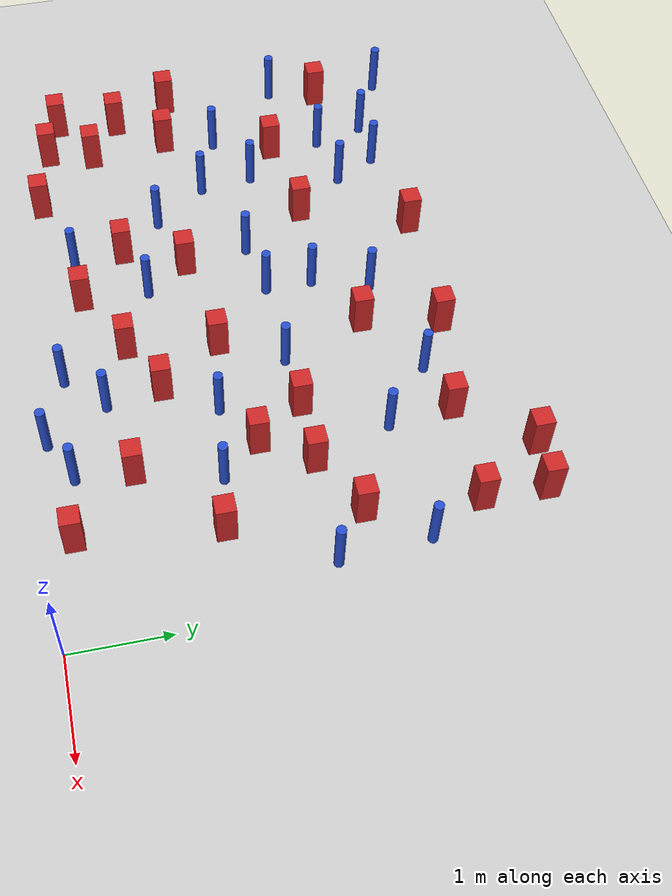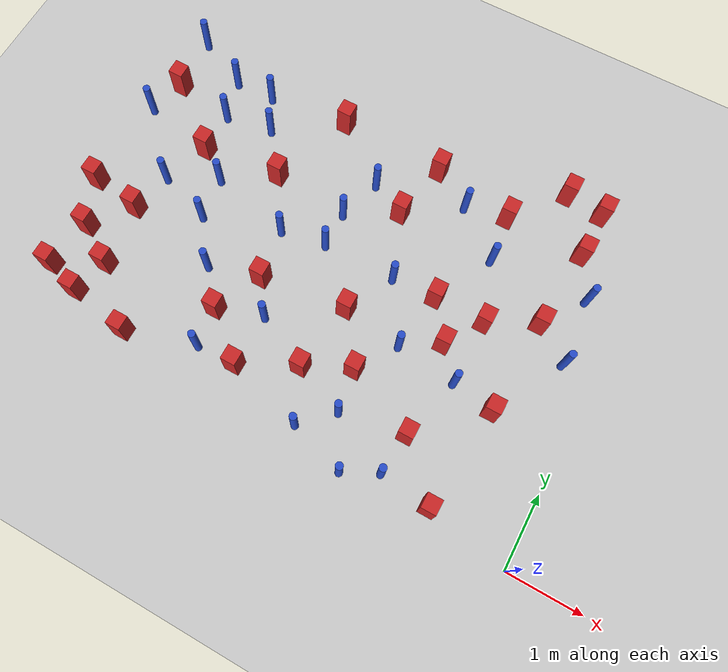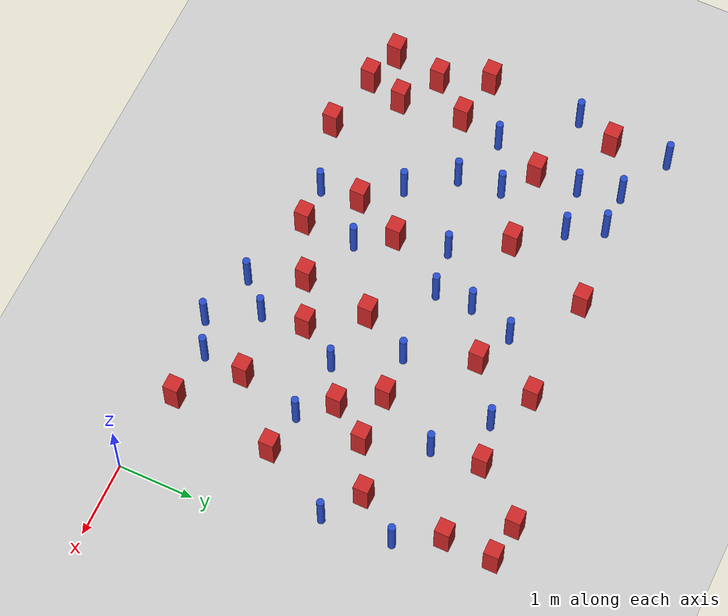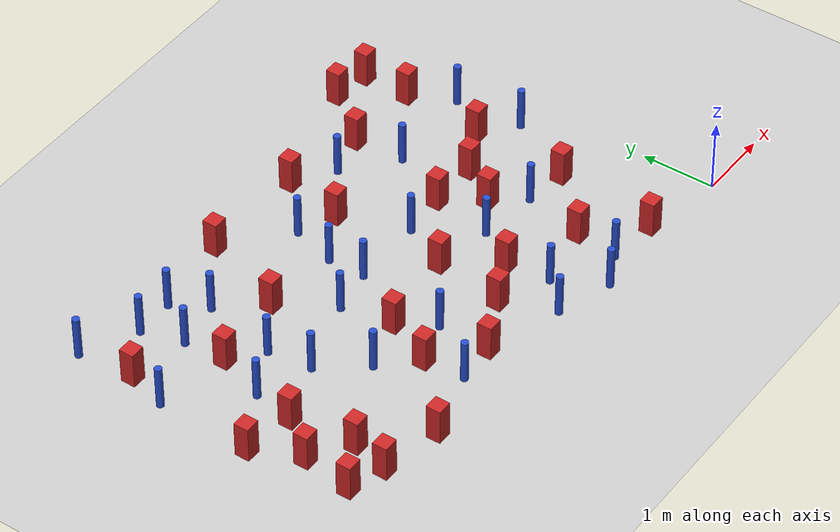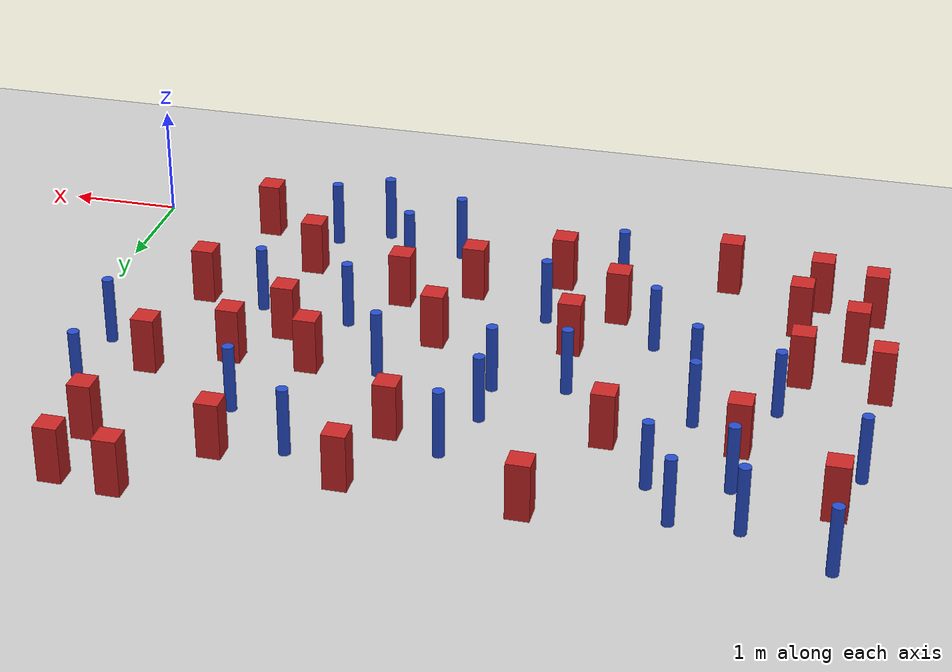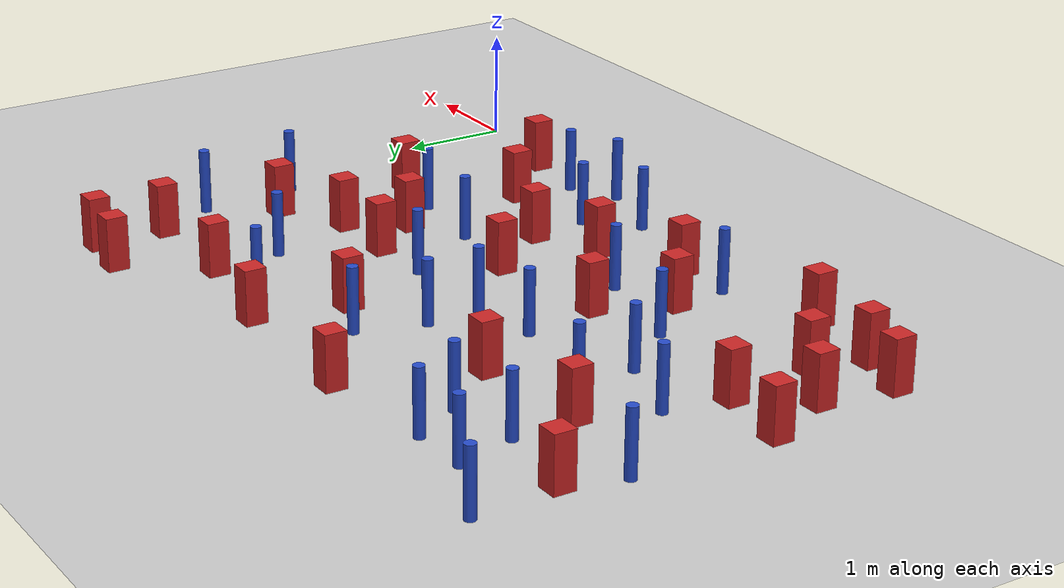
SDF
<sdf version="1.6">
 <world name="default">
  <model name="ground_plane">
   <static>1</static>
   <link name="link">
    <collision name="collision">
     <geometry><plane><normal>0 0 1</normal><size>100 100</size></plane></geometry>
     <surface><friction><ode><mu>100</mu><mu2>50</mu2></ode></friction></surface>
    </collision>
    <visual name="visual">
     <cast_shadows>0</cast_shadows>
     <geometry><plane><normal>0 0 1</normal><size>100 100</size></plane></geometry>
     <material>
      <ambient>1.0 1.0 1.0 1.0</ambient>
      <diffuse>0.8 0.8 0.8 1.0</diffuse>
      <specular>0.01 0.01 0.01 1.000000</specular>
     </material>
    </visual>
   </link>
  </model>
  <model name="square_post_obstacle5">
   <static>true</static>
   <pose>-6.71850591008 1.31194044388 -6.11067671241e-07 -5.50515727128e-06 -8.79689657224e-07 2.37013304536e-05</pose>
   <link name="link">
    <pose>0 0 0.25 0 -0 0</pose>
    <inertial>
     <mass>100</mass>
     <inertia>
      <ixx>0.166667</ixx>
      <ixy>0</ixy>
      <ixz>0</ixz>
      <iyy>0.166667</iyy>
      <iyz>0</iyz>
      <izz>0.166667</izz>
     </inertia>
    </inertial>
    <collision name="collision"><geometry><box><size>.2 .2 .5</size></box></geometry></collision>
    <visual name="visual">
     <geometry><box><size>.2 .2 .5</size></box></geometry>
     <material>
      <script><name>Gazebo/Red</name><uri>file://media/materials/scripts/gazebo.material</uri></script>
     </material>
    </visual>
   </link>
  </model>
  <model name="pole_obstacle9">
   <static>true</static>
   <pose>-4.42675377921 2.47935275778 -9.47619616065e-06 5.49618799738e-07 2.36310414051e-07 -1.55090534805e-07</pose>
   <link name="link">
    <pose>0 0 0.3 0 -0 0</pose>
    <inertial>
     <mass>1</mass>
     <inertia><ixx>0.145833</ixx><ixy>0</ixy><ixz>0</ixz><iyy>0.145833</iyy><iyz>0</iyz><izz>0.125</izz></inertia>
    </inertial>
    <collision name="collision">
     <geometry><cylinder><radius>0.05</radius><length>.6</length></cylinder></geometry>
    </collision>
    <visual name="visual">
     <geometry><cylinder><radius>0.05</radius><length>.6</length></cylinder></geometry>
     <material>
      <script><name>Gazebo/Blue</name><uri>file://media/materials/scripts/gazebo.material</uri></script>
     </material>
    </visual>
   </link>
  </model>
  <model name="pole_obstacle29">
   <static>true</static>
   <pose>-0.407549543129 2.58789013498 -9.47619616065e-06 5.49618799738e-07 2.36310414065e-07 -1.55090534798e-07</pose>
   <link name="link">
    <pose>0 0 0.3 0 -0 0</pose>
    <inertial>
     <mass>1</mass>
     <inertia><ixx>0.145833</ixx><ixy>0</ixy><ixz>0</ixz><iyy>0.145833</iyy><iyz>0</iyz><izz>0.125</izz></inertia>
    </inertial>
    <collision name="collision">
     <geometry><cylinder><radius>0.05</radius><length>.6</length></cylinder></geometry>
    </collision>
    <visual name="visual">
     <geometry><cylinder><radius>0.05</radius><length>.6</length></cylinder></geometry>
     <material>
      <script><name>Gazebo/Blue</name><uri>file://media/materials/scripts/gazebo.material</uri></script>
     </material>
    </visual>
   </link>
  </model>
  <model name="square_post_obstacle21">
   <static>true</static>
   <pose>-6.30766919779 1.83901440815 -6.11067671241e-07 -5.50515727128e-06 -8.79689657224e-07 2.37013304536e-05</pose>
   <link name="link">
    <pose>0 0 0.25 0 -0 0</pose>
    <inertial>
     <mass>100</mass>
     <inertia>
      <ixx>0.166667</ixx>
      <ixy>0</ixy>
      <ixz>0</ixz>
      <iyy>0.166667</iyy>
      <iyz>0</iyz>
      <izz>0.166667</izz>
     </inertia>
    </inertial>
    <collision name="collision"><geometry><box><size>.2 .2 .5</size></box></geometry></collision>
    <visual name="visual">
     <geometry><box><size>.2 .2 .5</size></box></geometry>
     <material>
      <script><name>Gazebo/Red</name><uri>file://media/materials/scripts/gazebo.material</uri></script>
     </material>
    </visual>
   </link>
  </model>
  <model name="pole_obstacle37">
   <static>true</static>
   <pose>-5.53204723374 2.74040481735 -9.47619616065e-06 5.49618799738e-07 2.36310414051e-07 -1.55090534805e-07</pose>
   <link name="link">
    <pose>0 0 0.3 0 -0 0</pose>
    <inertial>
     <mass>1</mass>
     <inertia><ixx>0.145833</ixx><ixy>0</ixy><ixz>0</ixz><iyy>0.145833</iyy><iyz>0</iyz><izz>0.125</izz></inertia>
    </inertial>
    <collision name="collision">
     <geometry><cylinder><radius>0.05</radius><length>.6</length></cylinder></geometry>
    </collision>
    <visual name="visual">
     <geometry><cylinder><radius>0.05</radius><length>.6</length></cylinder></geometry>
     <material>
      <script><name>Gazebo/Blue</name><uri>file://media/materials/scripts/gazebo.material</uri></script>
     </material>
    </visual>
   </link>
  </model>
  <model name="square_post_obstacle43">
   <static>true</static>
   <pose>-3.28221434505 0.988741921372 -6.11067671241e-07 -5.50515727128e-06 -8.79689657224e-07 2.37013304536e-05</pose>
   <link name="link">
    <pose>0 0 0.25 0 -0 0</pose>
    <inertial>
     <mass>100</mass>
     <inertia>
      <ixx>0.166667</ixx>
      <ixy>0</ixy>
      <ixz>0</ixz>
      <iyy>0.166667</iyy>
      <iyz>0</iyz>
      <izz>0.166667</izz>
     </inertia>
    </inertial>
    <collision name="collision"><geometry><box><size>.2 .2 .5</size></box></geometry></collision>
    <visual name="visual">
     <geometry><box><size>.2 .2 .5</size></box></geometry>
     <material>
      <script><name>Gazebo/Red</name><uri>file://media/materials/scripts/gazebo.material</uri></script>
     </material>
    </visual>
   </link>
  </model>
  <model name="pole_obstacle56">
   <static>true</static>
   <pose>-5.01510371946 1.57673768823 -9.47619616065e-06 5.49618799738e-07 2.36310414071e-07 -1.55090534796e-07</pose>
   <link name="link">
    <pose>0 0 0.3 0 -0 0</pose>
    <inertial>
     <mass>1</mass>
     <inertia><ixx>0.145833</ixx><ixy>0</ixy><ixz>0</ixz><iyy>0.145833</iyy><iyz>0</iyz><izz>0.125</izz></inertia>
    </inertial>
    <collision name="collision">
     <geometry><cylinder><radius>0.05</radius><length>.6</length></cylinder></geometry>
    </collision>
    <visual name="visual">
     <geometry><cylinder><radius>0.05</radius><length>.6</length></cylinder></geometry>
     <material>
      <script><name>Gazebo/Blue</name><uri>file://media/materials/scripts/gazebo.material</uri></script>
     </material>
    </visual>
   </link>
  </model>
  <model name="square_post_obstacle45">
   <static>true</static>
   <pose>-2.97929473007 4.29568476726 -6.11067671241e-07 -5.50515727128e-06 -8.79689657224e-07 2.37013304536e-05</pose>
   <link name="link">
    <pose>0 0 0.25 0 -0 0</pose>
    <inertial>
     <mass>100</mass>
     <inertia>
      <ixx>0.166667</ixx>
      <ixy>0</ixy>
      <ixz>0</ixz>
      <iyy>0.166667</iyy>
      <iyz>0</iyz>
      <izz>0.166667</izz>
     </inertia>
    </inertial>
    <collision name="collision"><geometry><box><size>.2 .2 .5</size></box></geometry></collision>
    <visual name="visual">
     <geometry><box><size>.2 .2 .5</size></box></geometry>
     <material>
      <script><name>Gazebo/Red</name><uri>file://media/materials/scripts/gazebo.material</uri></script>
     </material>
    </visual>
   </link>
  </model>
  <model name="pole_obstacle60">
   <static>true</static>
   <pose>-3.81041652475 2.58553218472 -9.47619616065e-06 5.49618799737e-07 2.36310414067e-07 -1.55090534797e-07</pose>
   <link name="link">
    <pose>0 0 0.3 0 -0 0</pose>
    <inertial>
     <mass>1</mass>
     <inertia><ixx>0.145833</ixx><ixy>0</ixy><ixz>0</ixz><iyy>0.145833</iyy><iyz>0</iyz><izz>0.125</izz></inertia>
    </inertial>
    <collision name="collision">
     <geometry><cylinder><radius>0.05</radius><length>.6</length></cylinder></geometry>
    </collision>
    <visual name="visual">
     <geometry><cylinder><radius>0.05</radius><length>.6</length></cylinder></geometry>
     <material>
      <script><name>Gazebo/Blue</name><uri>file://media/materials/scripts/gazebo.material</uri></script>
     </material>
    </visual>
   </link>
  </model>
  <model name="pole_obstacle63">
   <static>true</static>
   <pose>-2.32597562203 1.80805460604 -9.47619616065e-06 5.49618799737e-07 2.36310414072e-07 -1.55090534793e-07</pose>
   <link name="link">
    <pose>0 0 0.3 0 -0 0</pose>
    <inertial>
     <mass>1</mass>
     <inertia><ixx>0.145833</ixx><ixy>0</ixy><ixz>0</ixz><iyy>0.145833</iyy><iyz>0</iyz><izz>0.125</izz></inertia>
    </inertial>
    <collision name="collision">
     <geometry><cylinder><radius>0.05</radius><length>.6</length></cylinder></geometry>
    </collision>
    <visual name="visual">
     <geometry><cylinder><radius>0.05</radius><length>.6</length></cylinder></geometry>
     <material>
      <script><name>Gazebo/Blue</name><uri>file://media/materials/scripts/gazebo.material</uri></script>
     </material>
    </visual>
   </link>
  </model>
  <model name="pole_obstacle73">
   <static>true</static>
   <pose>-2.43576720087 3.96687609349 -9.47619616065e-06 5.49618799738e-07 2.36310414038e-07 -1.55090534814e-07</pose>
   <link name="link">
    <pose>0 0 0.3 0 -0 0</pose>
    <inertial>
     <mass>1</mass>
     <inertia><ixx>0.145833</ixx><ixy>0</ixy><ixz>0</ixz><iyy>0.145833</iyy><iyz>0</iyz><izz>0.125</izz></inertia>
    </inertial>
    <collision name="collision">
     <geometry><cylinder><radius>0.05</radius><length>.6</length></cylinder></geometry>
    </collision>
    <visual name="visual">
     <geometry><cylinder><radius>0.05</radius><length>.6</length></cylinder></geometry>
     <material>
      <script><name>Gazebo/Blue</name><uri>file://media/materials/scripts/gazebo.material</uri></script>
     </material>
    </visual>
   </link>
  </model>
  <model name="square_post_obstacle64">
   <static>true</static>
   <pose>-3.14449191012 1.93475221391 -6.11067671241e-07 -5.50515727128e-06 -8.79689657224e-07 2.37013304536e-05</pose>
   <link name="link">
    <pose>0 0 0.25 0 -0 0</pose>
    <inertial>
     <mass>100</mass>
     <inertia>
      <ixx>0.166667</ixx>
      <ixy>0</ixy>
      <ixz>0</ixz>
      <iyy>0.166667</iyy>
      <iyz>0</iyz>
      <izz>0.166667</izz>
     </inertia>
    </inertial>
    <collision name="collision"><geometry><box><size>.2 .2 .5</size></box></geometry></collision>
    <visual name="visual">
     <geometry><box><size>.2 .2 .5</size></box></geometry>
     <material>
      <script><name>Gazebo/Red</name><uri>file://media/materials/scripts/gazebo.material</uri></script>
     </material>
    </visual>
   </link>
  </model>
  <model name="pole_obstacle89">
   <static>true</static>
   <pose>-4.00736299978 1.32666267555 -9.47619616065e-06 5.49618799738e-07 2.3631041407e-07 -1.55090534796e-07</pose>
   <link name="link">
    <pose>0 0 0.3 0 -0 0</pose>
    <inertial>
     <mass>1</mass>
     <inertia><ixx>0.145833</ixx><ixy>0</ixy><ixz>0</ixz><iyy>0.145833</iyy><iyz>0</iyz><izz>0.125</izz></inertia>
    </inertial>
    <collision name="collision">
     <geometry><cylinder><radius>0.05</radius><length>.6</length></cylinder></geometry>
    </collision>
    <visual name="visual">
     <geometry><cylinder><radius>0.05</radius><length>.6</length></cylinder></geometry>
     <material>
      <script><name>Gazebo/Blue</name><uri>file://media/materials/scripts/gazebo.material</uri></script>
     </material>
    </visual>
   </link>
  </model>
  <model name="pole_obstacle91">
   <static>true</static>
   <pose>-0.479366391949 3.51222091118 -9.47619616065e-06 5.49618799737e-07 2.36310414073e-07 -1.55090534793e-07</pose>
   <link name="link">
    <pose>0 0 0.3 0 -0 0</pose>
    <inertial>
     <mass>1</mass>
     <inertia><ixx>0.145833</ixx><ixy>0</ixy><ixz>0</ixz><iyy>0.145833</iyy><iyz>0</iyz><izz>0.125</izz></inertia>
    </inertial>
    <collision name="collision">
     <geometry><cylinder><radius>0.05</radius><length>.6</length></cylinder></geometry>
    </collision>
    <visual name="visual">
     <geometry><cylinder><radius>0.05</radius><length>.6</length></cylinder></geometry>
     <material>
      <script><name>Gazebo/Blue</name><uri>file://media/materials/scripts/gazebo.material</uri></script>
     </material>
    </visual>
   </link>
  </model>
  <model name="pole_obstacle95">
   <static>true</static>
   <pose>-5.31796287006 3.7429533571 -9.47619616065e-06 5.49618799738e-07 2.36310414051e-07 -1.55090534805e-07</pose>
   <link name="link">
    <pose>0 0 0.3 0 -0 0</pose>
    <inertial>
     <mass>1</mass>
     <inertia><ixx>0.145833</ixx><ixy>0</ixy><ixz>0</ixz><iyy>0.145833</iyy><iyz>0</iyz><izz>0.125</izz></inertia>
    </inertial>
    <collision name="collision">
     <geometry><cylinder><radius>0.05</radius><length>.6</length></cylinder></geometry>
    </collision>
    <visual name="visual">
     <geometry><cylinder><radius>0.05</radius><length>.6</length></cylinder></geometry>
     <material>
      <script><name>Gazebo/Blue</name><uri>file://media/materials/scripts/gazebo.material</uri></script>
     </material>
    </visual>
   </link>
  </model>
  <model name="pole_obstacle97">
   <static>true</static>
   <pose>-5.56870672233 4.20300526217 -9.47619616065e-06 5.49618799737e-07 2.36310414037e-07 -1.55090534814e-07</pose>
   <link name="link">
    <pose>0 0 0.3 0 -0 0</pose>
    <inertial>
     <mass>1</mass>
     <inertia><ixx>0.145833</ixx><ixy>0</ixy><ixz>0</ixz><iyy>0.145833</iyy><iyz>0</iyz><izz>0.125</izz></inertia>
    </inertial>
    <collision name="collision">
     <geometry><cylinder><radius>0.05</radius><length>.6</length></cylinder></geometry>
    </collision>
    <visual name="visual">
     <geometry><cylinder><radius>0.05</radius><length>.6</length></cylinder></geometry>
     <material>
      <script><name>Gazebo/Blue</name><uri>file://media/materials/scripts/gazebo.material</uri></script>
     </material>
    </visual>
   </link>
  </model>
  <model name="square_post_obstacle89">
   <static>true</static>
   <pose>-0.781590104117 4.73480967978 -6.11067671241e-07 -5.50515727128e-06 -8.79689657224e-07 2.37013304536e-05</pose>
   <link name="link">
    <pose>0 0 0.25 0 -0 0</pose>
    <inertial>
     <mass>100</mass>
     <inertia>
      <ixx>0.166667</ixx>
      <ixy>0</ixy>
      <ixz>0</ixz>
      <iyy>0.166667</iyy>
      <iyz>0</iyz>
      <izz>0.166667</izz>
     </inertia>
    </inertial>
    <collision name="collision"><geometry><box><size>.2 .2 .5</size></box></geometry></collision>
    <visual name="visual">
     <geometry><box><size>.2 .2 .5</size></box></geometry>
     <material>
      <script><name>Gazebo/Red</name><uri>file://media/materials/scripts/gazebo.material</uri></script>
     </material>
    </visual>
   </link>
  </model>
  <model name="square_post_obstacle91">
   <static>true</static>
   <pose>-1.29704092949 4.79692663737 -6.11067671241e-07 -5.50515727128e-06 -8.79689657224e-07 2.37013304536e-05</pose>
   <link name="link">
    <pose>0 0 0.25 0 -0 0</pose>
    <inertial>
     <mass>100</mass>
     <inertia>
      <ixx>0.166667</ixx>
      <ixy>0</ixy>
      <ixz>0</ixz>
      <iyy>0.166667</iyy>
      <iyz>0</iyz>
      <izz>0.166667</izz>
     </inertia>
    </inertial>
    <collision name="collision"><geometry><box><size>.2 .2 .5</size></box></geometry></collision>
    <visual name="visual">
     <geometry><box><size>.2 .2 .5</size></box></geometry>
     <material>
      <script><name>Gazebo/Red</name><uri>file://media/materials/scripts/gazebo.material</uri></script>
     </material>
    </visual>
   </link>
  </model>
  <model name="square_post_obstacle97">
   <static>true</static>
   <pose>-3.15389476929 3.4750707526 -6.11067671241e-07 -5.50515727128e-06 -8.79689657224e-07 2.37013304536e-05</pose>
   <link name="link">
    <pose>0 0 0.25 0 -0 0</pose>
    <inertial>
     <mass>100</mass>
     <inertia>
      <ixx>0.166667</ixx>
      <ixy>0</ixy>
      <ixz>0</ixz>
      <iyy>0.166667</iyy>
      <iyz>0</iyz>
      <izz>0.166667</izz>
     </inertia>
    </inertial>
    <collision name="collision"><geometry><box><size>.2 .2 .5</size></box></geometry></collision>
    <visual name="visual">
     <geometry><box><size>.2 .2 .5</size></box></geometry>
     <material>
      <script><name>Gazebo/Red</name><uri>file://media/materials/scripts/gazebo.material</uri></script>
     </material>
    </visual>
   </link>
  </model>
  <model name="pole_obstacle106">
   <static>true</static>
   <pose>-5.45821417304 2.15387815227 -9.47619616065e-06 5.49618799738e-07 2.36310414051e-07 -1.55090534805e-07</pose>
   <link name="link">
    <pose>0 0 0.3 0 -0 0</pose>
    <inertial>
     <mass>1</mass>
     <inertia><ixx>0.145833</ixx><ixy>0</ixy><ixz>0</ixz><iyy>0.145833</iyy><iyz>0</iyz><izz>0.125</izz></inertia>
    </inertial>
    <collision name="collision">
     <geometry><cylinder><radius>0.05</radius><length>.6</length></cylinder></geometry>
    </collision>
    <visual name="visual">
     <geometry><cylinder><radius>0.05</radius><length>.6</length></cylinder></geometry>
     <material>
      <script><name>Gazebo/Blue</name><uri>file://media/materials/scripts/gazebo.material</uri></script>
     </material>
    </visual>
   </link>
  </model>
  <model name="pole_obstacle107">
   <static>true</static>
   <pose>-3.63682703863 3.69407329209 -9.47619616065e-06 5.49618799737e-07 2.36310414067e-07 -1.55090534797e-07</pose>
   <link name="link">
    <pose>0 0 0.3 0 -0 0</pose>
    <inertial>
     <mass>1</mass>
     <inertia><ixx>0.145833</ixx><ixy>0</ixy><ixz>0</ixz><iyy>0.145833</iyy><iyz>0</iyz><izz>0.125</izz></inertia>
    </inertial>
    <collision name="collision">
     <geometry><cylinder><radius>0.05</radius><length>.6</length></cylinder></geometry>
    </collision>
    <visual name="visual">
     <geometry><cylinder><radius>0.05</radius><length>.6</length></cylinder></geometry>
     <material>
      <script><name>Gazebo/Blue</name><uri>file://media/materials/scripts/gazebo.material</uri></script>
     </material>
    </visual>
   </link>
  </model>
  <model name="pole_obstacle108">
   <static>true</static>
   <pose>-2.58751264463 0.697577423785 -9.47619616065e-06 5.49618799738e-07 2.36310414075e-07 -1.55090534793e-07</pose>
   <link name="link">
    <pose>0 0 0.3 0 -0 0</pose>
    <inertial>
     <mass>1</mass>
     <inertia><ixx>0.145833</ixx><ixy>0</ixy><ixz>0</ixz><iyy>0.145833</iyy><iyz>0</iyz><izz>0.125</izz></inertia>
    </inertial>
    <collision name="collision">
     <geometry><cylinder><radius>0.05</radius><length>.6</length></cylinder></geometry>
    </collision>
    <visual name="visual">
     <geometry><cylinder><radius>0.05</radius><length>.6</length></cylinder></geometry>
     <material>
      <script><name>Gazebo/Blue</name><uri>file://media/materials/scripts/gazebo.material</uri></script>
     </material>
    </visual>
   </link>
  </model>
  <model name="pole_obstacle110">
   <static>true</static>
   <pose>-2.9837641775 0.306458332262 -9.47619616065e-06 5.49618799738e-07 2.36310414074e-07 -1.55090534794e-07</pose>
   <link name="link">
    <pose>0 0 0.3 0 -0 0</pose>
    <inertial>
     <mass>1</mass>
     <inertia><ixx>0.145833</ixx><ixy>0</ixy><ixz>0</ixz><iyy>0.145833</iyy><iyz>0</iyz><izz>0.125</izz></inertia>
    </inertial>
    <collision name="collision">
     <geometry><cylinder><radius>0.05</radius><length>.6</length></cylinder></geometry>
    </collision>
    <visual name="visual">
     <geometry><cylinder><radius>0.05</radius><length>.6</length></cylinder></geometry>
     <material>
      <script><name>Gazebo/Blue</name><uri>file://media/materials/scripts/gazebo.material</uri></script>
     </material>
    </visual>
   </link>
  </model>
  <model name="pole_obstacle112">
   <static>true</static>
   <pose>-6.18390398437 2.40989784438 -9.47619616065e-06 5.49618799738e-07 2.36310414051e-07 -1.55090534805e-07</pose>
   <link name="link">
    <pose>0 0 0.3 0 -0 0</pose>
    <inertial>
     <mass>1</mass>
     <inertia><ixx>0.145833</ixx><ixy>0</ixy><ixz>0</ixz><iyy>0.145833</iyy><iyz>0</iyz><izz>0.125</izz></inertia>
    </inertial>
    <collision name="collision">
     <geometry><cylinder><radius>0.05</radius><length>.6</length></cylinder></geometry>
    </collision>
    <visual name="visual">
     <geometry><cylinder><radius>0.05</radius><length>.6</length></cylinder></geometry>
     <material>
      <script><name>Gazebo/Blue</name><uri>file://media/materials/scripts/gazebo.material</uri></script>
     </material>
    </visual>
   </link>
  </model>
  <model name="square_post_obstacle110">
   <static>true</static>
   <pose>-1.72783677513 0.863293945138 -6.11067671241e-07 -5.50515727128e-06 -8.79689657224e-07 2.37013304536e-05</pose>
   <link name="link">
    <pose>0 0 0.25 0 -0 0</pose>
    <inertial>
     <mass>100</mass>
     <inertia>
      <ixx>0.166667</ixx>
      <ixy>0</ixy>
      <ixz>0</ixz>
      <iyy>0.166667</iyy>
      <iyz>0</iyz>
      <izz>0.166667</izz>
     </inertia>
    </inertial>
    <collision name="collision"><geometry><box><size>.2 .2 .5</size></box></geometry></collision>
    <visual name="visual">
     <geometry><box><size>.2 .2 .5</size></box></geometry>
     <material>
      <script><name>Gazebo/Red</name><uri>file://media/materials/scripts/gazebo.material</uri></script>
     </material>
    </visual>
   </link>
  </model>
  <model name="pole_obstacle114">
   <static>true</static>
   <pose>-2.23346955366 0.0652996512063 -9.4761961606e-06 5.49618799729e-07 2.36310414001e-07 -1.55090534824e-07</pose>
   <link name="link">
    <pose>0 0 0.3 0 -0 0</pose>
    <inertial>
     <mass>1</mass>
     <inertia><ixx>0.145833</ixx><ixy>0</ixy><ixz>0</ixz><iyy>0.145833</iyy><iyz>0</iyz><izz>0.125</izz></inertia>
    </inertial>
    <collision name="collision">
     <geometry><cylinder><radius>0.05</radius><length>.6</length></cylinder></geometry>
    </collision>
    <visual name="visual">
     <geometry><cylinder><radius>0.05</radius><length>.6</length></cylinder></geometry>
     <material>
      <script><name>Gazebo/Blue</name><uri>file://media/materials/scripts/gazebo.material</uri></script>
     </material>
    </visual>
   </link>
  </model>
  <model name="square_post_obstacle112">
   <static>true</static>
   <pose>-5.94815192449 3.05635954442 -6.11067671241e-07 -5.50515727128e-06 -8.79689657224e-07 2.37013304536e-05</pose>
   <link name="link">
    <pose>0 0 0.25 0 -0 0</pose>
    <inertial>
     <mass>100</mass>
     <inertia>
      <ixx>0.166667</ixx>
      <ixy>0</ixy>
      <ixz>0</ixz>
      <iyy>0.166667</iyy>
      <iyz>0</iyz>
      <izz>0.166667</izz>
     </inertia>
    </inertial>
    <collision name="collision"><geometry><box><size>.2 .2 .5</size></box></geometry></collision>
    <visual name="visual">
     <geometry><box><size>.2 .2 .5</size></box></geometry>
     <material>
      <script><name>Gazebo/Red</name><uri>file://media/materials/scripts/gazebo.material</uri></script>
     </material>
    </visual>
   </link>
  </model>
  <model name="square_post_obstacle115">
   <static>true</static>
   <pose>-1.10542528183 0.213949239884 -6.11067671241e-07 -5.50515727128e-06 -8.79689657224e-07 2.37013304536e-05</pose>
   <link name="link">
    <pose>0 0 0.25 0 -0 0</pose>
    <inertial>
     <mass>100</mass>
     <inertia>
      <ixx>0.166667</ixx>
      <ixy>0</ixy>
      <ixz>0</ixz>
      <iyy>0.166667</iyy>
      <iyz>0</iyz>
      <izz>0.166667</izz>
     </inertia>
    </inertial>
    <collision name="collision"><geometry><box><size>.2 .2 .5</size></box></geometry></collision>
    <visual name="visual">
     <geometry><box><size>.2 .2 .5</size></box></geometry>
     <material>
      <script><name>Gazebo/Red</name><uri>file://media/materials/scripts/gazebo.material</uri></script>
     </material>
    </visual>
   </link>
  </model>
  <model name="pole_obstacle117">
   <static>true</static>
   <pose>-1.79773958999 3.43417025839 -9.47619616065e-06 5.49618799737e-07 2.36310414062e-07 -1.55090534798e-07</pose>
   <link name="link">
    <pose>0 0 0.3 0 -0 0</pose>
    <inertial>
     <mass>1</mass>
     <inertia><ixx>0.145833</ixx><ixy>0</ixy><ixz>0</ixz><iyy>0.145833</iyy><iyz>0</iyz><izz>0.125</izz></inertia>
    </inertial>
    <collision name="collision">
     <geometry><cylinder><radius>0.05</radius><length>.6</length></cylinder></geometry>
    </collision>
    <visual name="visual">
     <geometry><cylinder><radius>0.05</radius><length>.6</length></cylinder></geometry>
     <material>
      <script><name>Gazebo/Blue</name><uri>file://media/materials/scripts/gazebo.material</uri></script>
     </material>
    </visual>
   </link>
  </model>
  <model name="pole_obstacle124">
   <static>true</static>
   <pose>-1.78192058812 0.288860388278 -9.47619616065e-06 5.49618799737e-07 2.36310414064e-07 -1.55090534799e-07</pose>
   <link name="link">
    <pose>0 0 0.3 0 -0 0</pose>
    <inertial>
     <mass>1</mass>
     <inertia><ixx>0.145833</ixx><ixy>0</ixy><ixz>0</ixz><iyy>0.145833</iyy><iyz>0</iyz><izz>0.125</izz></inertia>
    </inertial>
    <collision name="collision">
     <geometry><cylinder><radius>0.05</radius><length>.6</length></cylinder></geometry>
    </collision>
    <visual name="visual">
     <geometry><cylinder><radius>0.05</radius><length>.6</length></cylinder></geometry>
     <material>
      <script><name>Gazebo/Blue</name><uri>file://media/materials/scripts/gazebo.material</uri></script>
     </material>
    </visual>
   </link>
  </model>
  <model name="square_post_obstacle124">
   <static>true</static>
   <pose>-4.87430365861 3.18166774046 -6.11067671241e-07 -5.50515727128e-06 -8.79689657224e-07 2.37013304536e-05</pose>
   <link name="link">
    <pose>0 0 0.25 0 -0 0</pose>
    <inertial>
     <mass>100</mass>
     <inertia>
      <ixx>0.166667</ixx>
      <ixy>0</ixy>
      <ixz>0</ixz>
      <iyy>0.166667</iyy>
      <iyz>0</iyz>
      <izz>0.166667</izz>
     </inertia>
    </inertial>
    <collision name="collision"><geometry><box><size>.2 .2 .5</size></box></geometry></collision>
    <visual name="visual">
     <geometry><box><size>.2 .2 .5</size></box></geometry>
     <material>
      <script><name>Gazebo/Red</name><uri>file://media/materials/scripts/gazebo.material</uri></script>
     </material>
    </visual>
   </link>
  </model>
  <model name="square_post_obstacle125">
   <static>true</static>
   <pose>-0.884444475084 2.94263026767 -6.11067671241e-07 -5.50515727128e-06 -8.79689657224e-07 2.37013304536e-05</pose>
   <link name="link">
    <pose>0 0 0.25 0 -0 0</pose>
    <inertial>
     <mass>100</mass>
     <inertia>
      <ixx>0.166667</ixx>
      <ixy>0</ixy>
      <ixz>0</ixz>
      <iyy>0.166667</iyy>
      <iyz>0</iyz>
      <izz>0.166667</izz>
     </inertia>
    </inertial>
    <collision name="collision"><geometry><box><size>.2 .2 .5</size></box></geometry></collision>
    <visual name="visual">
     <geometry><box><size>.2 .2 .5</size></box></geometry>
     <material>
      <script><name>Gazebo/Red</name><uri>file://media/materials/scripts/gazebo.material</uri></script>
     </material>
    </visual>
   </link>
  </model>
  <model name="pole_obstacle133">
   <static>true</static>
   <pose>-5.96952253661 3.63624031053 -9.47619616065e-06 5.49618799738e-07 2.36310414051e-07 -1.55090534805e-07</pose>
   <link name="link">
    <pose>0 0 0.3 0 -0 0</pose>
    <inertial>
     <mass>1</mass>
     <inertia><ixx>0.145833</ixx><ixy>0</ixy><ixz>0</ixz><iyy>0.145833</iyy><iyz>0</iyz><izz>0.125</izz></inertia>
    </inertial>
    <collision name="collision">
     <geometry><cylinder><radius>0.05</radius><length>.6</length></cylinder></geometry>
    </collision>
    <visual name="visual">
     <geometry><cylinder><radius>0.05</radius><length>.6</length></cylinder></geometry>
     <material>
      <script><name>Gazebo/Blue</name><uri>file://media/materials/scripts/gazebo.material</uri></script>
     </material>
    </visual>
   </link>
  </model>
  <model name="pole_obstacle137">
   <static>true</static>
   <pose>-6.84509279148 4.54575611753 -9.47619616065e-06 5.49618799737e-07 2.36310414037e-07 -1.55090534814e-07</pose>
   <link name="link">
    <pose>0 0 0.3 0 -0 0</pose>
    <inertial>
     <mass>1</mass>
     <inertia><ixx>0.145833</ixx><ixy>0</ixy><ixz>0</ixz><iyy>0.145833</iyy><iyz>0</iyz><izz>0.125</izz></inertia>
    </inertial>
    <collision name="collision">
     <geometry><cylinder><radius>0.05</radius><length>.6</length></cylinder></geometry>
    </collision>
    <visual name="visual">
     <geometry><cylinder><radius>0.05</radius><length>.6</length></cylinder></geometry>
     <material>
      <script><name>Gazebo/Blue</name><uri>file://media/materials/scripts/gazebo.material</uri></script>
     </material>
    </visual>
   </link>
  </model>
  <model name="square_post_obstacle137">
   <static>true</static>
   <pose>-6.78805421945 3.77385305047 -6.11067671241e-07 -5.50515727128e-06 -8.79689657224e-07 2.37013304536e-05</pose>
   <link name="link">
    <pose>0 0 0.25 0 -0 0</pose>
    <inertial>
     <mass>100</mass>
     <inertia>
      <ixx>0.166667</ixx>
      <ixy>0</ixy>
      <ixz>0</ixz>
      <iyy>0.166667</iyy>
      <iyz>0</iyz>
      <izz>0.166667</izz>
     </inertia>
    </inertial>
    <collision name="collision"><geometry><box><size>.2 .2 .5</size></box></geometry></collision>
    <visual name="visual">
     <geometry><box><size>.2 .2 .5</size></box></geometry>
     <material>
      <script><name>Gazebo/Red</name><uri>file://media/materials/scripts/gazebo.material</uri></script>
     </material>
    </visual>
   </link>
  </model>
  <model name="square_post_obstacle141">
   <static>true</static>
   <pose>-1.87162733996 4.09694390139 -6.11067671241e-07 -5.50515727128e-06 -8.79689657224e-07 2.37013304536e-05</pose>
   <link name="link">
    <pose>0 0 0.25 0 -0 0</pose>
    <inertial>
     <mass>100</mass>
     <inertia>
      <ixx>0.166667</ixx>
      <ixy>0</ixy>
      <ixz>0</ixz>
      <iyy>0.166667</iyy>
      <iyz>0</iyz>
      <izz>0.166667</izz>
     </inertia>
    </inertial>
    <collision name="collision"><geometry><box><size>.2 .2 .5</size></box></geometry></collision>
    <visual name="visual">
     <geometry><box><size>.2 .2 .5</size></box></geometry>
     <material>
      <script><name>Gazebo/Red</name><uri>file://media/materials/scripts/gazebo.material</uri></script>
     </material>
    </visual>
   </link>
  </model>
  <model name="square_post_obstacle144">
   <static>true</static>
   <pose>-1.84852684578 2.11087876344 -6.11067671241e-07 -5.50515727128e-06 -8.79689657224e-07 2.37013304536e-05</pose>
   <link name="link">
    <pose>0 0 0.25 0 -0 0</pose>
    <inertial>
     <mass>100</mass>
     <inertia>
      <ixx>0.166667</ixx>
      <ixy>0</ixy>
      <ixz>0</ixz>
      <iyy>0.166667</iyy>
      <iyz>0</iyz>
      <izz>0.166667</izz>
     </inertia>
    </inertial>
    <collision name="collision"><geometry><box><size>.2 .2 .5</size></box></geometry></collision>
    <visual name="visual">
     <geometry><box><size>.2 .2 .5</size></box></geometry>
     <material>
      <script><name>Gazebo/Red</name><uri>file://media/materials/scripts/gazebo.material</uri></script>
     </material>
    </visual>
   </link>
  </model>
  <model name="square_post_obstacle160">
   <static>true</static>
   <pose>-4.44655628636 4.34482757581 -6.11067671241e-07 -5.50515727128e-06 -8.79689657224e-07 2.37013304536e-05</pose>
   <link name="link">
    <pose>0 0 0.25 0 -0 0</pose>
    <inertial>
     <mass>100</mass>
     <inertia>
      <ixx>0.166667</ixx>
      <ixy>0</ixy>
      <ixz>0</ixz>
      <iyy>0.166667</iyy>
      <iyz>0</iyz>
      <izz>0.166667</izz>
     </inertia>
    </inertial>
    <collision name="collision"><geometry><box><size>.2 .2 .5</size></box></geometry></collision>
    <visual name="visual">
     <geometry><box><size>.2 .2 .5</size></box></geometry>
     <material>
      <script><name>Gazebo/Red</name><uri>file://media/materials/scripts/gazebo.material</uri></script>
     </material>
    </visual>
   </link>
  </model>
  <model name="square_post_obstacle166">
   <static>true</static>
   <pose>-0.945219140684 1.62322870551 -6.11067671241e-07 -5.50515727128e-06 -8.79689657224e-07 2.37013304536e-05</pose>
   <link name="link">
    <pose>0 0 0.25 0 -0 0</pose>
    <inertial>
     <mass>100</mass>
     <inertia>
      <ixx>0.166667</ixx>
      <ixy>0</ixy>
      <ixz>0</ixz>
      <iyy>0.166667</iyy>
      <iyz>0</iyz>
      <izz>0.166667</izz>
     </inertia>
    </inertial>
    <collision name="collision"><geometry><box><size>.2 .2 .5</size></box></geometry></collision>
    <visual name="visual">
     <geometry><box><size>.2 .2 .5</size></box></geometry>
     <material>
      <script><name>Gazebo/Red</name><uri>file://media/materials/scripts/gazebo.material</uri></script>
     </material>
    </visual>
   </link>
  </model>
  <model name="pole_obstacle170">
   <static>true</static>
   <pose>-2.8113020349 2.58684067351 -9.47619616065e-06 5.49618799737e-07 2.36310414051e-07 -1.55090534807e-07</pose>
   <link name="link">
    <pose>0 0 0.3 0 -0 0</pose>
    <inertial>
     <mass>1</mass>
     <inertia><ixx>0.145833</ixx><ixy>0</ixy><ixz>0</ixz><iyy>0.145833</iyy><iyz>0</iyz><izz>0.125</izz></inertia>
    </inertial>
    <collision name="collision">
     <geometry><cylinder><radius>0.05</radius><length>.6</length></cylinder></geometry>
    </collision>
    <visual name="visual">
     <geometry><cylinder><radius>0.05</radius><length>.6</length></cylinder></geometry>
     <material>
      <script><name>Gazebo/Blue</name><uri>file://media/materials/scripts/gazebo.material</uri></script>
     </material>
    </visual>
   </link>
  </model>
  <model name="square_post_obstacle173">
   <static>true</static>
   <pose>-6.20415409493 0.976097416272 -6.11067671241e-07 -5.50515727128e-06 -8.79689657224e-07 2.37013304536e-05</pose>
   <link name="link">
    <pose>0 0 0.25 0 -0 0</pose>
    <inertial>
     <mass>100</mass>
     <inertia>
      <ixx>0.166667</ixx>
      <ixy>0</ixy>
      <ixz>0</ixz>
      <iyy>0.166667</iyy>
      <iyz>0</iyz>
      <izz>0.166667</izz>
     </inertia>
    </inertial>
    <collision name="collision"><geometry><box><size>.2 .2 .5</size></box></geometry></collision>
    <visual name="visual">
     <geometry><box><size>.2 .2 .5</size></box></geometry>
     <material>
      <script><name>Gazebo/Red</name><uri>file://media/materials/scripts/gazebo.material</uri></script>
     </material>
    </visual>
   </link>
  </model>
  <model name="pole_obstacle180">
   <static>true</static>
   <pose>-3.8202703411 3.08833689925 -9.47619616065e-06 5.49618799737e-07 2.36310414067e-07 -1.55090534797e-07</pose>
   <link name="link">
    <pose>0 0 0.3 0 -0 0</pose>
    <inertial>
     <mass>1</mass>
     <inertia><ixx>0.145833</ixx><ixy>0</ixy><ixz>0</ixz><iyy>0.145833</iyy><iyz>0</iyz><izz>0.125</izz></inertia>
    </inertial>
    <collision name="collision">
     <geometry><cylinder><radius>0.05</radius><length>.6</length></cylinder></geometry>
    </collision>
    <visual name="visual">
     <geometry><cylinder><radius>0.05</radius><length>.6</length></cylinder></geometry>
     <material>
      <script><name>Gazebo/Blue</name><uri>file://media/materials/scripts/gazebo.material</uri></script>
     </material>
    </visual>
   </link>
  </model>
  <model name="square_post_obstacle181">
   <static>true</static>
   <pose>-6.9903827175 1.94885261169 -6.11067671241e-07 -5.50515727128e-06 -8.79689657224e-07 2.37013304536e-05</pose>
   <link name="link">
    <pose>0 0 0.25 0 -0 0</pose>
    <inertial>
     <mass>100</mass>
     <inertia>
      <ixx>0.166667</ixx>
      <ixy>0</ixy>
      <ixz>0</ixz>
      <iyy>0.166667</iyy>
      <iyz>0</iyz>
      <izz>0.166667</izz>
     </inertia>
    </inertial>
    <collision name="collision"><geometry><box><size>.2 .2 .5</size></box></geometry></collision>
    <visual name="visual">
     <geometry><box><size>.2 .2 .5</size></box></geometry>
     <material>
      <script><name>Gazebo/Red</name><uri>file://media/materials/scripts/gazebo.material</uri></script>
     </material>
    </visual>
   </link>
  </model>
  <model name="square_post_obstacle182">
   <static>true</static>
   <pose>-4.61827263407 1.12951715261 -6.11067671241e-07 -5.50515727128e-06 -8.79689657224e-07 2.37013304536e-05</pose>
   <link name="link">
    <pose>0 0 0.25 0 -0 0</pose>
    <inertial>
     <mass>100</mass>
     <inertia>
      <ixx>0.166667</ixx>
      <ixy>0</ixy>
      <ixz>0</ixz>
      <iyy>0.166667</iyy>
      <iyz>0</iyz>
      <izz>0.166667</izz>
     </inertia>
    </inertial>
    <collision name="collision"><geometry><box><size>.2 .2 .5</size></box></geometry></collision>
    <visual name="visual">
     <geometry><box><size>.2 .2 .5</size></box></geometry>
     <material>
      <script><name>Gazebo/Red</name><uri>file://media/materials/scripts/gazebo.material</uri></script>
     </material>
    </visual>
   </link>
  </model>
  <model name="pole_obstacle184">
   <static>true</static>
   <pose>-6.12078781154 4.19044407086 -9.47619616065e-06 5.49618799737e-07 2.36310414037e-07 -1.55090534814e-07</pose>
   <link name="link">
    <pose>0 0 0.3 0 -0 0</pose>
    <inertial>
     <mass>1</mass>
     <inertia><ixx>0.145833</ixx><ixy>0</ixy><ixz>0</ixz><iyy>0.145833</iyy><iyz>0</iyz><izz>0.125</izz></inertia>
    </inertial>
    <collision name="collision">
     <geometry><cylinder><radius>0.05</radius><length>.6</length></cylinder></geometry>
    </collision>
    <visual name="visual">
     <geometry><cylinder><radius>0.05</radius><length>.6</length></cylinder></geometry>
     <material>
      <script><name>Gazebo/Blue</name><uri>file://media/materials/scripts/gazebo.material</uri></script>
     </material>
    </visual>
   </link>
  </model>
  <model name="square_post_obstacle184">
   <static>true</static>
   <pose>-6.82339459575 0.633356296071 -6.11067671241e-07 -5.50515727128e-06 -8.79689657224e-07 2.37013304536e-05</pose>
   <link name="link">
    <pose>0 0 0.25 0 -0 0</pose>
    <inertial>
     <mass>100</mass>
     <inertia>
      <ixx>0.166667</ixx>
      <ixy>0</ixy>
      <ixz>0</ixz>
      <iyy>0.166667</iyy>
      <iyz>0</iyz>
      <izz>0.166667</izz>
     </inertia>
    </inertial>
    <collision name="collision"><geometry><box><size>.2 .2 .5</size></box></geometry></collision>
    <visual name="visual">
     <geometry><box><size>.2 .2 .5</size></box></geometry>
     <material>
      <script><name>Gazebo/Red</name><uri>file://media/materials/scripts/gazebo.material</uri></script>
     </material>
    </visual>
   </link>
  </model>
  <model name="square_post_obstacle193">
   <static>true</static>
   <pose>-4.02613046223 0.614924762856 -6.11067671241e-07 -5.50515727128e-06 -8.79689657224e-07 2.37013304536e-05</pose>
   <link name="link">
    <pose>0 0 0.25 0 -0 0</pose>
    <inertial>
     <mass>100</mass>
     <inertia>
      <ixx>0.166667</ixx>
      <ixy>0</ixy>
      <ixz>0</ixz>
      <iyy>0.166667</iyy>
      <iyz>0</iyz>
      <izz>0.166667</izz>
     </inertia>
    </inertial>
    <collision name="collision"><geometry><box><size>.2 .2 .5</size></box></geometry></collision>
    <visual name="visual">
     <geometry><box><size>.2 .2 .5</size></box></geometry>
     <material>
      <script><name>Gazebo/Red</name><uri>file://media/materials/scripts/gazebo.material</uri></script>
     </material>
    </visual>
   </link>
  </model>
  <model name="square_post_obstacle204">
   <static>true</static>
   <pose>-1.52036096305 2.61109211169 -6.11067671241e-07 -5.50515727128e-06 -8.79689657224e-07 2.37013304536e-05</pose>
   <link name="link">
    <pose>0 0 0.25 0 -0 0</pose>
    <inertial>
     <mass>100</mass>
     <inertia>
      <ixx>0.166667</ixx>
      <ixy>0</ixy>
      <ixz>0</ixz>
      <iyy>0.166667</iyy>
      <iyz>0</iyz>
      <izz>0.166667</izz>
     </inertia>
    </inertial>
    <collision name="collision"><geometry><box><size>.2 .2 .5</size></box></geometry></collision>
    <visual name="visual">
     <geometry><box><size>.2 .2 .5</size></box></geometry>
     <material>
      <script><name>Gazebo/Red</name><uri>file://media/materials/scripts/gazebo.material</uri></script>
     </material>
    </visual>
   </link>
  </model>
  <model name="square_post_obstacle205">
   <static>true</static>
   <pose>-6.33437750182 0.476022535033 -6.11067671241e-07 -5.50515727128e-06 -8.79689657224e-07 2.37013304536e-05</pose>
   <link name="link">
    <pose>0 0 0.25 0 -0 0</pose>
    <inertial>
     <mass>100</mass>
     <inertia>
      <ixx>0.166667</ixx>
      <ixy>0</ixy>
      <ixz>0</ixz>
      <iyy>0.166667</iyy>
      <iyz>0</iyz>
      <izz>0.166667</izz>
     </inertia>
    </inertial>
    <collision name="collision"><geometry><box><size>.2 .2 .5</size></box></geometry></collision>
    <visual name="visual">
     <geometry><box><size>.2 .2 .5</size></box></geometry>
     <material>
      <script><name>Gazebo/Red</name><uri>file://media/materials/scripts/gazebo.material</uri></script>
     </material>
    </visual>
   </link>
  </model>
  <model name="pole_obstacle198">
   <static>true</static>
   <pose>-4.56211988238 0.589693759822 -9.47619616065e-06 5.49618799737e-07 2.36310414061e-07 -1.550905348e-07</pose>
   <link name="link">
    <pose>0 0 0.3 0 -0 0</pose>
    <inertial>
     <mass>1</mass>
     <inertia><ixx>0.145833</ixx><ixy>0</ixy><ixz>0</ixz><iyy>0.145833</iyy><iyz>0</iyz><izz>0.125</izz></inertia>
    </inertial>
    <collision name="collision">
     <geometry><cylinder><radius>0.05</radius><length>.6</length></cylinder></geometry>
    </collision>
    <visual name="visual">
     <geometry><cylinder><radius>0.05</radius><length>.6</length></cylinder></geometry>
     <material>
      <script><name>Gazebo/Blue</name><uri>file://media/materials/scripts/gazebo.material</uri></script>
     </material>
    </visual>
   </link>
  </model>
  <model name="pole_obstacle215">
   <static>true</static>
   <pose>-6.9472899345 3.24481248315 -9.47619616065e-06 5.49618799738e-07 2.36310414051e-07 -1.55090534805e-07</pose>
   <link name="link">
    <pose>0 0 0.3 0 -0 0</pose>
    <inertial>
     <mass>1</mass>
     <inertia><ixx>0.145833</ixx><ixy>0</ixy><ixz>0</ixz><iyy>0.145833</iyy><iyz>0</iyz><izz>0.125</izz></inertia>
    </inertial>
    <collision name="collision">
     <geometry><cylinder><radius>0.05</radius><length>.6</length></cylinder></geometry>
    </collision>
    <visual name="visual">
     <geometry><cylinder><radius>0.05</radius><length>.6</length></cylinder></geometry>
     <material>
      <script><name>Gazebo/Blue</name><uri>file://media/materials/scripts/gazebo.material</uri></script>
     </material>
    </visual>
   </link>
  </model>
  <model name="pole_obstacle216">
   <static>true</static>
   <pose>-1.50590494362 1.71034869461 -9.47619616065e-06 5.49618799737e-07 2.36310414065e-07 -1.55090534798e-07</pose>
   <link name="link">
    <pose>0 0 0.3 0 -0 0</pose>
    <inertial>
     <mass>1</mass>
     <inertia><ixx>0.145833</ixx><ixy>0</ixy><ixz>0</ixz><iyy>0.145833</iyy><iyz>0</iyz><izz>0.125</izz></inertia>
    </inertial>
    <collision name="collision">
     <geometry><cylinder><radius>0.05</radius><length>.6</length></cylinder></geometry>
    </collision>
    <visual name="visual">
     <geometry><cylinder><radius>0.05</radius><length>.6</length></cylinder></geometry>
     <material>
      <script><name>Gazebo/Blue</name><uri>file://media/materials/scripts/gazebo.material</uri></script>
     </material>
    </visual>
   </link>
  </model>
  <model name="square_post_obstacle214">
   <static>true</static>
   <pose>-4.3179700498 1.78062997688 -6.11067671241e-07 -5.50515727128e-06 -8.79689657224e-07 2.37013304536e-05</pose>
   <link name="link">
    <pose>0 0 0.25 0 -0 0</pose>
    <inertial>
     <mass>100</mass>
     <inertia>
      <ixx>0.166667</ixx>
      <ixy>0</ixy>
      <ixz>0</ixz>
      <iyy>0.166667</iyy>
      <iyz>0</iyz>
      <izz>0.166667</izz>
     </inertia>
    </inertial>
    <collision name="collision"><geometry><box><size>.2 .2 .5</size></box></geometry></collision>
    <visual name="visual">
     <geometry><box><size>.2 .2 .5</size></box></geometry>
     <material>
      <script><name>Gazebo/Red</name><uri>file://media/materials/scripts/gazebo.material</uri></script>
     </material>
    </visual>
   </link>
  </model>
  <model name="square_post_obstacle215">
   <static>true</static>
   <pose>-0.788436049797 4.07867997688 -6.11067671241e-07 -5.50515727128e-06 -8.79689657224e-07 2.37013304536e-05</pose>
   <link name="link">
    <pose>0 0 0.25 0 -0 0</pose>
    <inertial>
     <mass>100</mass>
     <inertia>
      <ixx>0.166667</ixx>
      <ixy>0</ixy>
      <ixz>0</ixz>
      <iyy>0.166667</iyy>
      <iyz>0</iyz>
      <izz>0.166667</izz>
     </inertia>
    </inertial>
    <collision name="collision"><geometry><box><size>.2 .2 .5</size></box></geometry></collision>
    <visual name="visual">
     <geometry><box><size>.2 .2 .5</size></box></geometry>
     <material>
      <script><name>Gazebo/Red</name><uri>file://media/materials/scripts/gazebo.material</uri></script>
     </material>
    </visual>
   </link>
  </model>
  <model name="square_post_obstacle220">
   <static>true</static>
   <pose>-2.6762000498 1.27786997688 -6.11067671241e-07 -5.50515727128e-06 -8.79689657224e-07 2.37013304536e-05</pose>
   <link name="link">
    <pose>0 0 0.25 0 -0 0</pose>
    <inertial>
     <mass>100</mass>
     <inertia>
      <ixx>0.166667</ixx>
      <ixy>0</ixy>
      <ixz>0</ixz>
      <iyy>0.166667</iyy>
      <iyz>0</iyz>
      <izz>0.166667</izz>
     </inertia>
    </inertial>
    <collision name="collision"><geometry><box><size>.2 .2 .5</size></box></geometry></collision>
    <visual name="visual">
     <geometry><box><size>.2 .2 .5</size></box></geometry>
     <material>
      <script><name>Gazebo/Red</name><uri>file://media/materials/scripts/gazebo.material</uri></script>
     </material>
    </visual>
   </link>
  </model>
  <model name="square_post_obstacle223">
   <static>true</static>
   <pose>-2.2103400498 2.61593997688 -6.11067671241e-07 -5.50515727128e-06 -8.79689657224e-07 2.37013304536e-05</pose>
   <link name="link">
    <pose>0 0 0.25 0 -0 0</pose>
    <inertial>
     <mass>100</mass>
     <inertia>
      <ixx>0.166667</ixx>
      <ixy>0</ixy>
      <ixz>0</ixz>
      <iyy>0.166667</iyy>
      <iyz>0</iyz>
      <izz>0.166667</izz>
     </inertia>
    </inertial>
    <collision name="collision"><geometry><box><size>.2 .2 .5</size></box></geometry></collision>
    <visual name="visual">
     <geometry><box><size>.2 .2 .5</size></box></geometry>
     <material>
      <script><name>Gazebo/Red</name><uri>file://media/materials/scripts/gazebo.material</uri></script>
     </material>
    </visual>
   </link>
  </model>
  <model name="square_post_obstacle235">
   <static>true</static>
   <pose>-5.5012400498 0.315341976878 -6.11067671241e-07 -5.50515727128e-06 -8.79689657224e-07 2.37013304536e-05</pose>
   <link name="link">
    <pose>0 0 0.25 0 -0 0</pose>
    <inertial>
     <mass>100</mass>
     <inertia>
      <ixx>0.166667</ixx>
      <ixy>0</ixy>
      <ixz>0</ixz>
      <iyy>0.166667</iyy>
      <iyz>0</iyz>
      <izz>0.166667</izz>
     </inertia>
    </inertial>
    <collision name="collision"><geometry><box><size>.2 .2 .5</size></box></geometry></collision>
    <visual name="visual">
     <geometry><box><size>.2 .2 .5</size></box></geometry>
     <material>
      <script><name>Gazebo/Red</name><uri>file://media/materials/scripts/gazebo.material</uri></script>
     </material>
    </visual>
   </link>
  </model>
 </world>
</sdf>
